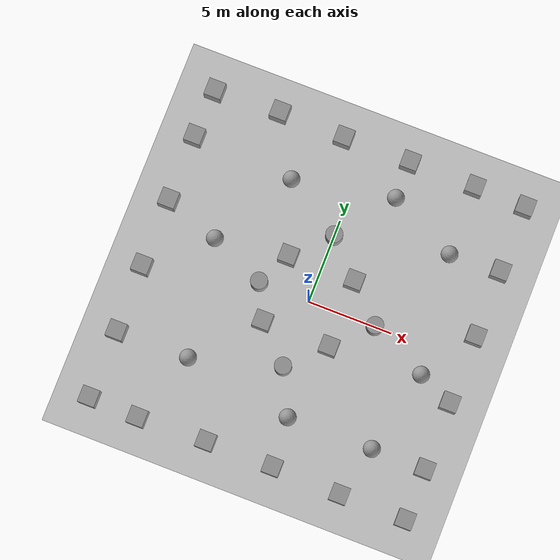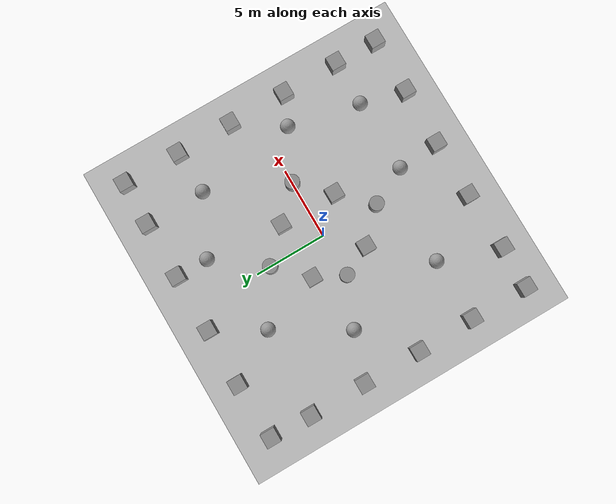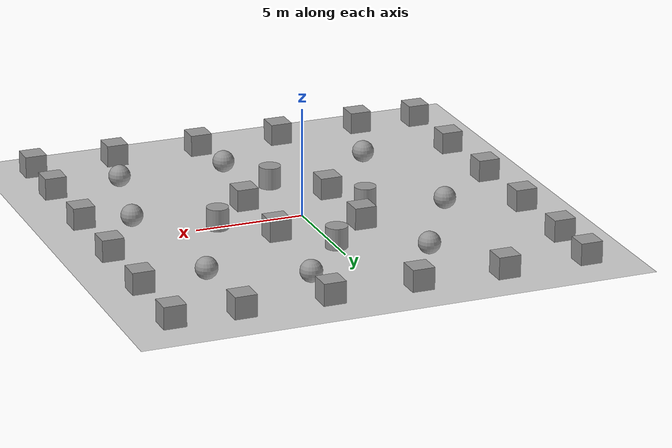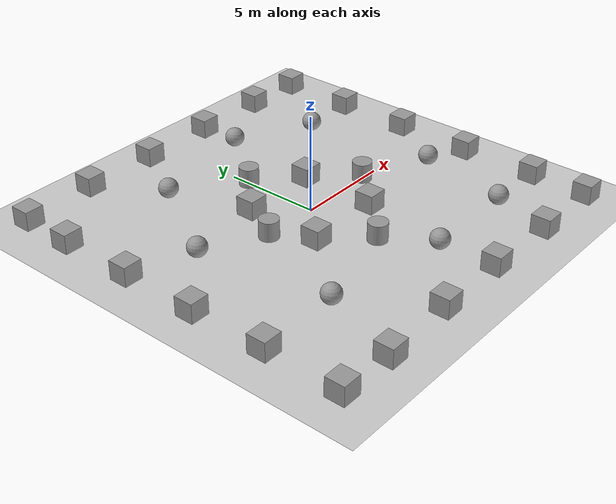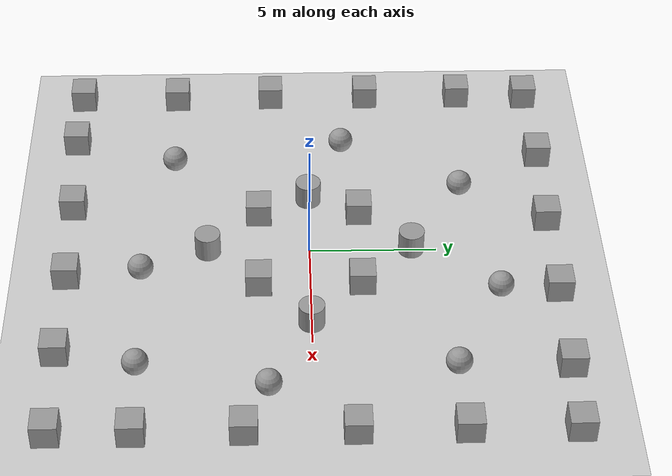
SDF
<sdf version="1.6">
 <world name="default">
  <light name="sun" type="directional">
   <pose>0 0 10 0 -0 0</pose>
   <diffuse>0.8 0.8 0.8 1</diffuse>
   <specular>0.2 0.2 0.2 1</specular>
   <attenuation>
    <range>1000</range>
    <constant>0.9</constant>
    <linear>0.01</linear>
    <quadratic>0.001</quadratic>
   </attenuation>
   <direction>0.5 0.1 -0.9</direction>
  </light>
  <model name="ground_plane">
   <static>1</static>
   <link name="link">
    <collision name="collision">
     <geometry><plane><normal>0 0 1</normal><size>100 100</size></plane></geometry>
     <surface><friction><ode><mu>100</mu><mu2>50</mu2></ode></friction></surface>
    </collision>
    <visual name="visual">
     <cast_shadows>0</cast_shadows>
     <geometry><plane><normal>0 0 1</normal><size>100 100</size></plane></geometry>
     <material>
      <script><uri>file://media/materials/scripts/gazebo.material</uri><name>Gazebo/Grey</name></script>
     </material>
    </visual>
    <velocity_decay><linear>0</linear><angular>0</angular></velocity_decay>
   </link>
  </model>
  <physics name="default_physics" default="0" type="ode">
   <max_step_size>0.01</max_step_size>
   <real_time_factor>1</real_time_factor>
   <real_time_update_rate>100</real_time_update_rate>
  </physics>
  <scene><ambient>0.4 0.4 0.4 1</ambient><background>0.7 0.7 0.7 1</background><shadows>1</shadows></scene>
  <model name="unit_box_1">
   <pose>2 -2 0.5 0 -0 0</pose>
   <link name="link">
    <inertial>
     <mass>1</mass>
     <inertia><ixx>1</ixx><ixy>0</ixy><ixz>0</ixz><iyy>1</iyy><iyz>0</iyz><izz>1</izz></inertia>
    </inertial>
    <collision name="collision"><geometry><box><size>1 1 1</size></box></geometry></collision>
    <visual name="visual">
     <geometry><box><size>1 1 1</size></box></geometry>
     <material>
      <script><uri>file://media/materials/scripts/gazebo.material</uri><name>Gazebo/Grey</name></script>
     </material>
    </visual>
    <velocity_decay><linear>0</linear><angular>0</angular></velocity_decay>
   </link>
   <static>0</static>
  </model>
  <model name="unit_box_2">
   <pose>-2 -2 0.5 0 -0 0</pose>
   <link name="link">
    <inertial>
     <mass>1</mass>
     <inertia><ixx>1</ixx><ixy>0</ixy><ixz>0</ixz><iyy>1</iyy><iyz>0</iyz><izz>1</izz></inertia>
    </inertial>
    <collision name="collision"><geometry><box><size>1 1 1</size></box></geometry></collision>
    <visual name="visual">
     <geometry><box><size>1 1 1</size></box></geometry>
     <material>
      <script><uri>file://media/materials/scripts/gazebo.material</uri><name>Gazebo/Grey</name></script>
     </material>
    </visual>
    <velocity_decay><linear>0</linear><angular>0</angular></velocity_decay>
   </link>
   <static>0</static>
  </model>
  <model name="unit_box_3">
   <pose>-2 2 0.5 0 -0 0</pose>
   <link name="link">
    <inertial>
     <mass>1</mass>
     <inertia><ixx>1</ixx><ixy>0</ixy><ixz>0</ixz><iyy>1</iyy><iyz>0</iyz><izz>1</izz></inertia>
    </inertial>
    <collision name="collision"><geometry><box><size>1 1 1</size></box></geometry></collision>
    <visual name="visual">
     <geometry><box><size>1 1 1</size></box></geometry>
     <material>
      <script><uri>file://media/materials/scripts/gazebo.material</uri><name>Gazebo/Grey</name></script>
     </material>
    </visual>
    <velocity_decay><linear>0</linear><angular>0</angular></velocity_decay>
   </link>
   <static>0</static>
  </model>
  <model name="unit_box_4">
   <pose>2 2 0.5 0 -0 0</pose>
   <link name="link">
    <inertial>
     <mass>1</mass>
     <inertia><ixx>1</ixx><ixy>0</ixy><ixz>0</ixz><iyy>1</iyy><iyz>0</iyz><izz>1</izz></inertia>
    </inertial>
    <collision name="collision"><geometry><box><size>1 1 1</size></box></geometry></collision>
    <visual name="visual">
     <geometry><box><size>1 1 1</size></box></geometry>
     <material>
      <script><uri>file://media/materials/scripts/gazebo.material</uri><name>Gazebo/Grey</name></script>
     </material>
    </visual>
    <velocity_decay><linear>0</linear><angular>0</angular></velocity_decay>
   </link>
   <static>0</static>
  </model>
  <model name="unit_cylinder_1">
   <pose>4 0 0.49912 0 -0 0</pose>
   <link name="link">
    <inertial>
     <mass>1</mass>
     <inertia><ixx>1</ixx><ixy>0</ixy><ixz>0</ixz><iyy>1</iyy><iyz>0</iyz><izz>1</izz></inertia>
    </inertial>
    <collision name="collision">
     <geometry><cylinder><radius>0.5</radius><length>1</length></cylinder></geometry>
    </collision>
    <visual name="visual">
     <geometry><cylinder><radius>0.5</radius><length>1</length></cylinder></geometry>
     <material>
      <script><uri>file://media/materials/scripts/gazebo.material</uri><name>Gazebo/Grey</name></script>
     </material>
    </visual>
    <velocity_decay><linear>0</linear><angular>0</angular></velocity_decay>
   </link>
   <static>0</static>
  </model>
  <model name="unit_cylinder_2">
   <pose>0 4 0.49912 0 -0 0</pose>
   <link name="link">
    <inertial>
     <mass>1</mass>
     <inertia><ixx>1</ixx><ixy>0</ixy><ixz>0</ixz><iyy>1</iyy><iyz>0</iyz><izz>1</izz></inertia>
    </inertial>
    <collision name="collision">
     <geometry><cylinder><radius>0.5</radius><length>1</length></cylinder></geometry>
    </collision>
    <visual name="visual">
     <geometry><cylinder><radius>0.5</radius><length>1</length></cylinder></geometry>
     <material>
      <script><uri>file://media/materials/scripts/gazebo.material</uri><name>Gazebo/Grey</name></script>
     </material>
    </visual>
    <velocity_decay><linear>0</linear><angular>0</angular></velocity_decay>
   </link>
   <static>0</static>
  </model>
  <model name="unit_cylinder_3">
   <pose>-3 0 0.49912 0 -0 0</pose>
   <link name="link">
    <inertial>
     <mass>1</mass>
     <inertia><ixx>1</ixx><ixy>0</ixy><ixz>0</ixz><iyy>1</iyy><iyz>0</iyz><izz>1</izz></inertia>
    </inertial>
    <collision name="collision">
     <geometry><cylinder><radius>0.5</radius><length>1</length></cylinder></geometry>
    </collision>
    <visual name="visual">
     <geometry><cylinder><radius>0.5</radius><length>1</length></cylinder></geometry>
     <material>
      <script><uri>file://media/materials/scripts/gazebo.material</uri><name>Gazebo/Grey</name></script>
     </material>
    </visual>
    <velocity_decay><linear>0</linear><angular>0</angular></velocity_decay>
   </link>
   <static>0</static>
  </model>
  <model name="unit_cylinder_4">
   <pose>0 -4 0.49912 0 -0 0</pose>
   <link name="link">
    <inertial>
     <mass>1</mass>
     <inertia><ixx>1</ixx><ixy>0</ixy><ixz>0</ixz><iyy>1</iyy><iyz>0</iyz><izz>1</izz></inertia>
    </inertial>
    <collision name="collision">
     <geometry><cylinder><radius>0.5</radius><length>1</length></cylinder></geometry>
    </collision>
    <visual name="visual">
     <geometry><cylinder><radius>0.5</radius><length>1</length></cylinder></geometry>
     <material>
      <script><uri>file://media/materials/scripts/gazebo.material</uri><name>Gazebo/Grey</name></script>
     </material>
    </visual>
    <velocity_decay><linear>0</linear><angular>0</angular></velocity_decay>
   </link>
   <static>0</static>
  </model>
  <gravity>0 0 -9.8</gravity>
  <magnetic_field>6e-06 2.3e-05 -4.2e-05</magnetic_field>
  <atmosphere type="adiabatic"/>
  <spherical_coordinates>
   <surface_model>EARTH_WGS84</surface_model>
   <latitude_deg>0</latitude_deg>
   <longitude_deg>0</longitude_deg>
   <elevation>0</elevation>
   <heading_deg>0</heading_deg>
  </spherical_coordinates>
  <model name="unit_box_0">
   <pose>-9.36918 9.38786 0.49907 -0.0001 -0 -2e-06</pose>
   <link name="link">
    <inertial>
     <mass>1</mass>
     <inertia>
      <ixx>0.166667</ixx>
      <ixy>0</ixy>
      <ixz>0</ixz>
      <iyy>0.166667</iyy>
      <iyz>0</iyz>
      <izz>0.166667</izz>
     </inertia>
    </inertial>
    <collision name="collision"><geometry><box><size>1 1 1</size></box></geometry></collision>
    <visual name="visual">
     <geometry><box><size>1 1 1</size></box></geometry>
     <material>
      <script><name>Gazebo/Grey</name><uri>file://media/materials/scripts/gazebo.material</uri></script>
     </material>
    </visual>
   </link>
  </model>
  <model name="unit_box_0_clone">
   <pose>-5.44768 9.55261 0.5 0 -0 0</pose>
   <link name="link">
    <inertial>
     <mass>1</mass>
     <inertia>
      <ixx>0.166667</ixx>
      <ixy>0</ixy>
      <ixz>0</ixz>
      <iyy>0.166667</iyy>
      <iyz>0</iyz>
      <izz>0.166667</izz>
     </inertia>
    </inertial>
    <collision name="collision"><geometry><box><size>1 1 1</size></box></geometry></collision>
    <visual name="visual">
     <geometry><box><size>1 1 1</size></box></geometry>
     <material>
      <script><name>Gazebo/Grey</name><uri>file://media/materials/scripts/gazebo.material</uri></script>
     </material>
    </visual>
   </link>
  </model>
  <model name="unit_box_0_clone_0">
   <pose>-1.50895 9.49369 0.499802 0.000397 -0 0</pose>
   <link name="link">
    <inertial>
     <mass>1</mass>
     <inertia>
      <ixx>0.166667</ixx>
      <ixy>0</ixy>
      <ixz>0</ixz>
      <iyy>0.166667</iyy>
      <iyz>0</iyz>
      <izz>0.166667</izz>
     </inertia>
    </inertial>
    <collision name="collision"><geometry><box><size>1 1 1</size></box></geometry></collision>
    <visual name="visual">
     <geometry><box><size>1 1 1</size></box></geometry>
     <material>
      <script><name>Gazebo/Grey</name><uri>file://media/materials/scripts/gazebo.material</uri></script>
     </material>
    </visual>
   </link>
  </model>
  <model name="unit_box_0_clone_1">
   <pose>2.5144 9.52786 0.5 0 -0 0</pose>
   <link name="link">
    <inertial>
     <mass>1</mass>
     <inertia>
      <ixx>0.166667</ixx>
      <ixy>0</ixy>
      <ixz>0</ixz>
      <iyy>0.166667</iyy>
      <iyz>0</iyz>
      <izz>0.166667</izz>
     </inertia>
    </inertial>
    <collision name="collision"><geometry><box><size>1 1 1</size></box></geometry></collision>
    <visual name="visual">
     <geometry><box><size>1 1 1</size></box></geometry>
     <material>
      <script><name>Gazebo/Grey</name><uri>file://media/materials/scripts/gazebo.material</uri></script>
     </material>
    </visual>
   </link>
  </model>
  <model name="unit_box_0_clone_2">
   <pose>6.45431 9.51957 0.499802 0.000397 -0 0</pose>
   <link name="link">
    <inertial>
     <mass>1</mass>
     <inertia>
      <ixx>0.166667</ixx>
      <ixy>0</ixy>
      <ixz>0</ixz>
      <iyy>0.166667</iyy>
      <iyz>0</iyz>
      <izz>0.166667</izz>
     </inertia>
    </inertial>
    <collision name="collision"><geometry><box><size>1 1 1</size></box></geometry></collision>
    <visual name="visual">
     <geometry><box><size>1 1 1</size></box></geometry>
     <material>
      <script><name>Gazebo/Grey</name><uri>file://media/materials/scripts/gazebo.material</uri></script>
     </material>
    </visual>
   </link>
  </model>
  <model name="unit_box_0_clone_3">
   <pose>9.52754 9.43994 0.5 0 -0 0</pose>
   <link name="link">
    <inertial>
     <mass>1</mass>
     <inertia>
      <ixx>0.166667</ixx>
      <ixy>0</ixy>
      <ixz>0</ixz>
      <iyy>0.166667</iyy>
      <iyz>0</iyz>
      <izz>0.166667</izz>
     </inertia>
    </inertial>
    <collision name="collision"><geometry><box><size>1 1 1</size></box></geometry></collision>
    <visual name="visual">
     <geometry><box><size>1 1 1</size></box></geometry>
     <material>
      <script><name>Gazebo/Grey</name><uri>file://media/materials/scripts/gazebo.material</uri></script>
     </material>
    </visual>
   </link>
  </model>
  <model name="unit_box_0_clone_4">
   <pose>9.50233 5.48468 0.499802 0.000397 -0 0</pose>
   <link name="link">
    <inertial>
     <mass>1</mass>
     <inertia>
      <ixx>0.166667</ixx>
      <ixy>0</ixy>
      <ixz>0</ixz>
      <iyy>0.166667</iyy>
      <iyz>0</iyz>
      <izz>0.166667</izz>
     </inertia>
    </inertial>
    <collision name="collision"><geometry><box><size>1 1 1</size></box></geometry></collision>
    <visual name="visual">
     <geometry><box><size>1 1 1</size></box></geometry>
     <material>
      <script><name>Gazebo/Grey</name><uri>file://media/materials/scripts/gazebo.material</uri></script>
     </material>
    </visual>
   </link>
  </model>
  <model name="unit_box_0_clone_5">
   <pose>9.49882 1.52712 0.5 0 -0 0</pose>
   <link name="link">
    <inertial>
     <mass>1</mass>
     <inertia>
      <ixx>0.166667</ixx>
      <ixy>0</ixy>
      <ixz>0</ixz>
      <iyy>0.166667</iyy>
      <iyz>0</iyz>
      <izz>0.166667</izz>
     </inertia>
    </inertial>
    <collision name="collision"><geometry><box><size>1 1 1</size></box></geometry></collision>
    <visual name="visual">
     <geometry><box><size>1 1 1</size></box></geometry>
     <material>
      <script><name>Gazebo/Grey</name><uri>file://media/materials/scripts/gazebo.material</uri></script>
     </material>
    </visual>
   </link>
  </model>
  <model name="unit_box_0_clone_6">
   <pose>9.4637 -2.52645 0.499802 0.000397 -0 0</pose>
   <link name="link">
    <inertial>
     <mass>1</mass>
     <inertia>
      <ixx>0.166667</ixx>
      <ixy>0</ixy>
      <ixz>0</ixz>
      <iyy>0.166667</iyy>
      <iyz>0</iyz>
      <izz>0.166667</izz>
     </inertia>
    </inertial>
    <collision name="collision"><geometry><box><size>1 1 1</size></box></geometry></collision>
    <visual name="visual">
     <geometry><box><size>1 1 1</size></box></geometry>
     <material>
      <script><name>Gazebo/Grey</name><uri>file://media/materials/scripts/gazebo.material</uri></script>
     </material>
    </visual>
   </link>
  </model>
  <model name="unit_box_0_clone_7">
   <pose>9.47999 -6.51331 0.5 0 -0 0</pose>
   <link name="link">
    <inertial>
     <mass>1</mass>
     <inertia>
      <ixx>0.166667</ixx>
      <ixy>0</ixy>
      <ixz>0</ixz>
      <iyy>0.166667</iyy>
      <iyz>0</iyz>
      <izz>0.166667</izz>
     </inertia>
    </inertial>
    <collision name="collision"><geometry><box><size>1 1 1</size></box></geometry></collision>
    <visual name="visual">
     <geometry><box><size>1 1 1</size></box></geometry>
     <material>
      <script><name>Gazebo/Grey</name><uri>file://media/materials/scripts/gazebo.material</uri></script>
     </material>
    </visual>
   </link>
  </model>
  <model name="unit_box_0_clone_8">
   <pose>9.44937 -9.52677 0.499802 0.000397 -0 0</pose>
   <link name="link">
    <inertial>
     <mass>1</mass>
     <inertia>
      <ixx>0.166667</ixx>
      <ixy>0</ixy>
      <ixz>0</ixz>
      <iyy>0.166667</iyy>
      <iyz>0</iyz>
      <izz>0.166667</izz>
     </inertia>
    </inertial>
    <collision name="collision"><geometry><box><size>1 1 1</size></box></geometry></collision>
    <visual name="visual">
     <geometry><box><size>1 1 1</size></box></geometry>
     <material>
      <script><name>Gazebo/Grey</name><uri>file://media/materials/scripts/gazebo.material</uri></script>
     </material>
    </visual>
   </link>
  </model>
  <model name="unit_box_0_clone_9">
   <pose>5.52961 -9.53779 0.5 0 -0 0</pose>
   <link name="link">
    <inertial>
     <mass>1</mass>
     <inertia>
      <ixx>0.166667</ixx>
      <ixy>0</ixy>
      <ixz>0</ixz>
      <iyy>0.166667</iyy>
      <iyz>0</iyz>
      <izz>0.166667</izz>
     </inertia>
    </inertial>
    <collision name="collision"><geometry><box><size>1 1 1</size></box></geometry></collision>
    <visual name="visual">
     <geometry><box><size>1 1 1</size></box></geometry>
     <material>
      <script><name>Gazebo/Grey</name><uri>file://media/materials/scripts/gazebo.material</uri></script>
     </material>
    </visual>
   </link>
  </model>
  <model name="unit_box_0_clone_10">
   <pose>1.47236 -9.44386 0.499802 0.000397 -0 0</pose>
   <link name="link">
    <inertial>
     <mass>1</mass>
     <inertia>
      <ixx>0.166667</ixx>
      <ixy>0</ixy>
      <ixz>0</ixz>
      <iyy>0.166667</iyy>
      <iyz>0</iyz>
      <izz>0.166667</izz>
     </inertia>
    </inertial>
    <collision name="collision"><geometry><box><size>1 1 1</size></box></geometry></collision>
    <visual name="visual">
     <geometry><box><size>1 1 1</size></box></geometry>
     <material>
      <script><name>Gazebo/Grey</name><uri>file://media/materials/scripts/gazebo.material</uri></script>
     </material>
    </visual>
   </link>
  </model>
  <model name="unit_box_0_clone_11">
   <pose>-2.50923 -9.45983 0.5 0 -0 0</pose>
   <link name="link">
    <inertial>
     <mass>1</mass>
     <inertia>
      <ixx>0.166667</ixx>
      <ixy>0</ixy>
      <ixz>0</ixz>
      <iyy>0.166667</iyy>
      <iyz>0</iyz>
      <izz>0.166667</izz>
     </inertia>
    </inertial>
    <collision name="collision"><geometry><box><size>1 1 1</size></box></geometry></collision>
    <visual name="visual">
     <geometry><box><size>1 1 1</size></box></geometry>
     <material>
      <script><name>Gazebo/Grey</name><uri>file://media/materials/scripts/gazebo.material</uri></script>
     </material>
    </visual>
   </link>
  </model>
  <model name="unit_box_0_clone_12">
   <pose>-6.57654 -9.59703 0.499802 0.000397 -0 0</pose>
   <link name="link">
    <inertial>
     <mass>1</mass>
     <inertia>
      <ixx>0.166667</ixx>
      <ixy>0</ixy>
      <ixz>0</ixz>
      <iyy>0.166667</iyy>
      <iyz>0</iyz>
      <izz>0.166667</izz>
     </inertia>
    </inertial>
    <collision name="collision"><geometry><box><size>1 1 1</size></box></geometry></collision>
    <visual name="visual">
     <geometry><box><size>1 1 1</size></box></geometry>
     <material>
      <script><name>Gazebo/Grey</name><uri>file://media/materials/scripts/gazebo.material</uri></script>
     </material>
    </visual>
   </link>
  </model>
  <model name="unit_box_0_clone_13">
   <pose>-9.5144 -9.51287 0.5 0 -0 0</pose>
   <link name="link">
    <inertial>
     <mass>1</mass>
     <inertia>
      <ixx>0.166667</ixx>
      <ixy>0</ixy>
      <ixz>0</ixz>
      <iyy>0.166667</iyy>
      <iyz>0</iyz>
      <izz>0.166667</izz>
     </inertia>
    </inertial>
    <collision name="collision"><geometry><box><size>1 1 1</size></box></geometry></collision>
    <visual name="visual">
     <geometry><box><size>1 1 1</size></box></geometry>
     <material>
      <script><name>Gazebo/Grey</name><uri>file://media/materials/scripts/gazebo.material</uri></script>
     </material>
    </visual>
   </link>
  </model>
  <model name="unit_box_0_clone_14">
   <pose>-9.4698 -5.49073 0.499802 0.000397 -0 0</pose>
   <link name="link">
    <inertial>
     <mass>1</mass>
     <inertia>
      <ixx>0.166667</ixx>
      <ixy>0</ixy>
      <ixz>0</ixz>
      <iyy>0.166667</iyy>
      <iyz>0</iyz>
      <izz>0.166667</izz>
     </inertia>
    </inertial>
    <collision name="collision"><geometry><box><size>1 1 1</size></box></geometry></collision>
    <visual name="visual">
     <geometry><box><size>1 1 1</size></box></geometry>
     <material>
      <script><name>Gazebo/Grey</name><uri>file://media/materials/scripts/gazebo.material</uri></script>
     </material>
    </visual>
   </link>
  </model>
  <model name="unit_box_0_clone_15">
   <pose>-9.52957 -1.49844 0.5 0 -0 0</pose>
   <link name="link">
    <inertial>
     <mass>1</mass>
     <inertia>
      <ixx>0.166667</ixx>
      <ixy>0</ixy>
      <ixz>0</ixz>
      <iyy>0.166667</iyy>
      <iyz>0</iyz>
      <izz>0.166667</izz>
     </inertia>
    </inertial>
    <collision name="collision"><geometry><box><size>1 1 1</size></box></geometry></collision>
    <visual name="visual">
     <geometry><box><size>1 1 1</size></box></geometry>
     <material>
      <script><name>Gazebo/Grey</name><uri>file://media/materials/scripts/gazebo.material</uri></script>
     </material>
    </visual>
   </link>
  </model>
  <model name="unit_box_0_clone_16">
   <pose>-9.50408 2.5567 0.499802 0.000397 -0 0</pose>
   <link name="link">
    <inertial>
     <mass>1</mass>
     <inertia>
      <ixx>0.166667</ixx>
      <ixy>0</ixy>
      <ixz>0</ixz>
      <iyy>0.166667</iyy>
      <iyz>0</iyz>
      <izz>0.166667</izz>
     </inertia>
    </inertial>
    <collision name="collision"><geometry><box><size>1 1 1</size></box></geometry></collision>
    <visual name="visual">
     <geometry><box><size>1 1 1</size></box></geometry>
     <material>
      <script><name>Gazebo/Grey</name><uri>file://media/materials/scripts/gazebo.material</uri></script>
     </material>
    </visual>
   </link>
  </model>
  <model name="unit_box_0_clone_17">
   <pose>-9.48452 6.51049 0.5 0 -0 0</pose>
   <link name="link">
    <inertial>
     <mass>1</mass>
     <inertia>
      <ixx>0.166667</ixx>
      <ixy>0</ixy>
      <ixz>0</ixz>
      <iyy>0.166667</iyy>
      <iyz>0</iyz>
      <izz>0.166667</izz>
     </inertia>
    </inertial>
    <collision name="collision"><geometry><box><size>1 1 1</size></box></geometry></collision>
    <visual name="visual">
     <geometry><box><size>1 1 1</size></box></geometry>
     <material>
      <script><name>Gazebo/Grey</name><uri>file://media/materials/scripts/gazebo.material</uri></script>
     </material>
    </visual>
   </link>
  </model>
  <model name="unit_sphere_0">
   <pose>-5.16776 -5.45624 0.5 0 -0 0</pose>
   <link name="link">
    <inertial>
     <mass>1</mass>
     <inertia><ixx>0.1</ixx><ixy>0</ixy><ixz>0</ixz><iyy>0.1</iyy><iyz>0</iyz><izz>0.1</izz></inertia>
    </inertial>
    <collision name="collision"><geometry><sphere><radius>0.5</radius></sphere></geometry></collision>
    <visual name="visual">
     <geometry><sphere><radius>0.5</radius></sphere></geometry>
     <material>
      <script><name>Gazebo/Grey</name><uri>file://media/materials/scripts/gazebo.material</uri></script>
     </material>
    </visual>
   </link>
  </model>
  <model name="unit_sphere_0_clone">
   <pose>6.31065 -6.52451 0.5 0 -0 0</pose>
   <link name="link">
    <inertial>
     <mass>1</mass>
     <inertia><ixx>0.1</ixx><ixy>0</ixy><ixz>0</ixz><iyy>0.1</iyy><iyz>0</iyz><izz>0.1</izz></inertia>
    </inertial>
    <collision name="collision"><geometry><sphere><radius>0.5</radius></sphere></geometry></collision>
    <visual name="visual">
     <geometry><sphere><radius>0.5</radius></sphere></geometry>
     <material>
      <script><name>Gazebo/Grey</name><uri>file://media/materials/scripts/gazebo.material</uri></script>
     </material>
    </visual>
   </link>
  </model>
  <model name="unit_sphere_0_clone_0">
   <pose>1.27869 -6.57189 0.5 0 -0 0</pose>
   <link name="link">
    <inertial>
     <mass>1</mass>
     <inertia><ixx>0.1</ixx><ixy>0</ixy><ixz>0</ixz><iyy>0.1</iyy><iyz>0</iyz><izz>0.1</izz></inertia>
    </inertial>
    <collision name="collision"><geometry><sphere><radius>0.5</radius></sphere></geometry></collision>
    <visual name="visual">
     <geometry><sphere><radius>0.5</radius></sphere></geometry>
     <material>
      <script><name>Gazebo/Grey</name><uri>file://media/materials/scripts/gazebo.material</uri></script>
     </material>
    </visual>
   </link>
  </model>
  <model name="unit_sphere_0_clone_1">
   <pose>6.48203 5.35431 0.5 0 -0 0</pose>
   <link name="link">
    <inertial>
     <mass>1</mass>
     <inertia><ixx>0.1</ixx><ixy>0</ixy><ixz>0</ixz><iyy>0.1</iyy><iyz>0</iyz><izz>0.1</izz></inertia>
    </inertial>
    <collision name="collision"><geometry><sphere><radius>0.5</radius></sphere></geometry></collision>
    <visual name="visual">
     <geometry><sphere><radius>0.5</radius></sphere></geometry>
     <material>
      <script><name>Gazebo/Grey</name><uri>file://media/materials/scripts/gazebo.material</uri></script>
     </material>
    </visual>
   </link>
  </model>
  <model name="unit_sphere_0_clone_2">
   <pose>-3.43315 6.15774 0.5 0 -0 0</pose>
   <link name="link">
    <inertial>
     <mass>1</mass>
     <inertia><ixx>0.1</ixx><ixy>0</ixy><ixz>0</ixz><iyy>0.1</iyy><iyz>0</iyz><izz>0.1</izz></inertia>
    </inertial>
    <collision name="collision"><geometry><sphere><radius>0.5</radius></sphere></geometry></collision>
    <visual name="visual">
     <geometry><sphere><radius>0.5</radius></sphere></geometry>
     <material>
      <script><name>Gazebo/Grey</name><uri>file://media/materials/scripts/gazebo.material</uri></script>
     </material>
    </visual>
   </link>
  </model>
  <model name="unit_sphere_0_clone_3">
   <pose>-6.24958 1.41734 0.5 0 -0 0</pose>
   <link name="link">
    <inertial>
     <mass>1</mass>
     <inertia><ixx>0.1</ixx><ixy>0</ixy><ixz>0</ixz><iyy>0.1</iyy><iyz>0</iyz><izz>0.1</izz></inertia>
    </inertial>
    <collision name="collision"><geometry><sphere><radius>0.5</radius></sphere></geometry></collision>
    <visual name="visual">
     <geometry><sphere><radius>0.5</radius></sphere></geometry>
     <material>
      <script><name>Gazebo/Grey</name><uri>file://media/materials/scripts/gazebo.material</uri></script>
     </material>
    </visual>
   </link>
  </model>
  <model name="unit_sphere_0_clone_4">
   <pose>2.49401 7.29294 0.5 0 -0 0</pose>
   <link name="link">
    <inertial>
     <mass>1</mass>
     <inertia><ixx>0.1</ixx><ixy>0</ixy><ixz>0</ixz><iyy>0.1</iyy><iyz>0</iyz><izz>0.1</izz></inertia>
    </inertial>
    <collision name="collision"><geometry><sphere><radius>0.5</radius></sphere></geometry></collision>
    <visual name="visual">
     <geometry><sphere><radius>0.5</radius></sphere></geometry>
     <material>
      <script><name>Gazebo/Grey</name><uri>file://media/materials/scripts/gazebo.material</uri></script>
     </material>
    </visual>
   </link>
  </model>
  <model name="unit_sphere_0_clone_5">
   <pose>7.40649 -1.62898 0.5 0 -0 0</pose>
   <link name="link">
    <inertial>
     <mass>1</mass>
     <inertia><ixx>0.1</ixx><ixy>0</ixy><ixz>0</ixz><iyy>0.1</iyy><iyz>0</iyz><izz>0.1</izz></inertia>
    </inertial>
    <collision name="collision"><geometry><sphere><radius>0.5</radius></sphere></geometry></collision>
    <visual name="visual">
     <geometry><sphere><radius>0.5</radius></sphere></geometry>
     <material>
      <script><name>Gazebo/Grey</name><uri>file://media/materials/scripts/gazebo.material</uri></script>
     </material>
    </visual>
   </link>
  </model>
 </world>
</sdf>
